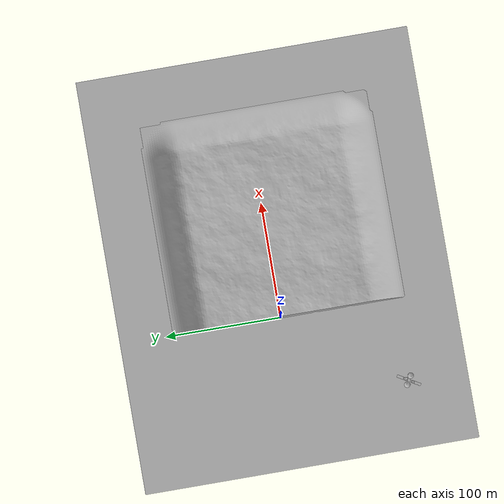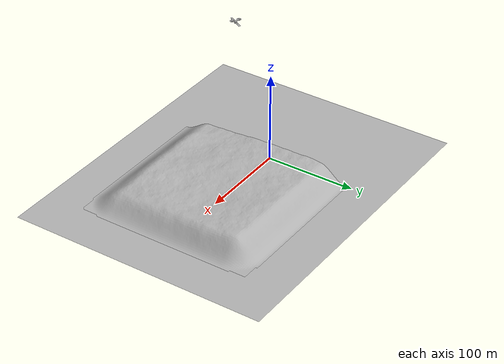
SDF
<sdf version="1.9">
 <world name="living_map">
  <model name="outside_ground">
   <static>true</static>
   <link name="l">
    <pose>-65 -5 -0.5 0 0 0</pose>
    <collision name="c"><geometry><box><size>130 290 1.0</size></box></geometry></collision>
   </link>
  </model>
  <model name="terrain">
   <static>true</static>
   <link name="l">
    <visual name="v">
     <geometry><mesh><uri>model://lm_terrain/meshes/terrain.obj</uri></mesh></geometry>
     <cast_shadows>false</cast_shadows>
    </visual>
   </link>
  </model>
  <model name="hillside">
   <static>true</static>
   <link name="l">
    <visual name="v"><geometry><mesh><uri>model://lm_hillside/meshes/hillside.obj</uri></mesh></geometry></visual>
   </link>
  </model>
  <model name="gallery_footprint">
   <static>true</static>
   <link name="l">
    <visual name="fp0">
     <pose>10.0 0.0 -0.33 0 0 0</pose>
     <geometry><box><size>20 4.0 0.02</size></box></geometry>
     <visibility_flags>2</visibility_flags>
     <material>
      <ambient>0.58 0.50 0.40 1</ambient>
      <diffuse>0.58 0.50 0.40 1</diffuse>
      <specular>0.1 0.1 0.1 1</specular>
     </material>
     <cast_shadows>false</cast_shadows>
    </visual>
    <visual name="fp1">
     <pose>30.0 0.0 -0.33 0 0 0</pose>
     <geometry><box><size>20 4.0 0.02</size></box></geometry>
     <visibility_flags>2</visibility_flags>
     <material>
      <ambient>0.58 0.50 0.40 1</ambient>
      <diffuse>0.58 0.50 0.40 1</diffuse>
      <specular>0.1 0.1 0.1 1</specular>
     </material>
     <cast_shadows>false</cast_shadows>
    </visual>
    <visual name="fp2">
     <pose>50.0 0.0 -0.33 0 0 0</pose>
     <geometry><box><size>20 4.0 0.02</size></box></geometry>
     <visibility_flags>2</visibility_flags>
     <material>
      <ambient>0.58 0.50 0.40 1</ambient>
      <diffuse>0.58 0.50 0.40 1</diffuse>
      <specular>0.1 0.1 0.1 1</specular>
     </material>
     <cast_shadows>false</cast_shadows>
    </visual>
    <visual name="fp3">
     <pose>50.0 0.0 -0.33 0 0 0</pose>
     <geometry><box><size>4.0 20 0.02</size></box></geometry>
     <visibility_flags>2</visibility_flags>
     <material>
      <ambient>0.58 0.50 0.40 1</ambient>
      <diffuse>0.58 0.50 0.40 1</diffuse>
      <specular>0.1 0.1 0.1 1</specular>
     </material>
     <cast_shadows>false</cast_shadows>
    </visual>
    <visual name="fp4">
     <pose>50.0 20.0 -0.33 0 0 0</pose>
     <geometry><box><size>4.0 20 0.02</size></box></geometry>
     <visibility_flags>2</visibility_flags>
     <material>
      <ambient>0.58 0.50 0.40 1</ambient>
      <diffuse>0.58 0.50 0.40 1</diffuse>
      <specular>0.1 0.1 0.1 1</specular>
     </material>
     <cast_shadows>false</cast_shadows>
    </visual>
    <visual name="fp5">
     <pose>70.0 0.0 -0.33 0 0 0</pose>
     <geometry><box><size>20 4.0 0.02</size></box></geometry>
     <visibility_flags>2</visibility_flags>
     <material>
      <ambient>0.58 0.50 0.40 1</ambient>
      <diffuse>0.58 0.50 0.40 1</diffuse>
      <specular>0.1 0.1 0.1 1</specular>
     </material>
     <cast_shadows>false</cast_shadows>
    </visual>
    <visual name="fp6">
     <pose>70.0 0.0 -0.33 0 0 0</pose>
     <geometry><box><size>4.0 20 0.02</size></box></geometry>
     <visibility_flags>2</visibility_flags>
     <material>
      <ambient>0.58 0.50 0.40 1</ambient>
      <diffuse>0.58 0.50 0.40 1</diffuse>
      <specular>0.1 0.1 0.1 1</specular>
     </material>
     <cast_shadows>false</cast_shadows>
    </visual>
    <visual name="fp7">
     <pose>70.0 -20.0 -0.33 0 0 0</pose>
     <geometry><box><size>4.0 20 0.02</size></box></geometry>
     <visibility_flags>2</visibility_flags>
     <material>
      <ambient>0.58 0.50 0.40 1</ambient>
      <diffuse>0.58 0.50 0.40 1</diffuse>
      <specular>0.1 0.1 0.1 1</specular>
     </material>
     <cast_shadows>false</cast_shadows>
    </visual>
    <visual name="fp8">
     <pose>70.0 20.0 -0.33 0 0 0</pose>
     <geometry><box><size>4.0 20 0.02</size></box></geometry>
     <visibility_flags>2</visibility_flags>
     <material>
      <ambient>0.58 0.50 0.40 1</ambient>
      <diffuse>0.58 0.50 0.40 1</diffuse>
      <specular>0.1 0.1 0.1 1</specular>
     </material>
     <cast_shadows>false</cast_shadows>
    </visual>
    <visual name="fp9">
     <pose>90.0 0.0 -0.33 0 0 0</pose>
     <geometry><box><size>20 4.0 0.02</size></box></geometry>
     <visibility_flags>2</visibility_flags>
     <material>
      <ambient>0.58 0.50 0.40 1</ambient>
      <diffuse>0.58 0.50 0.40 1</diffuse>
      <specular>0.1 0.1 0.1 1</specular>
     </material>
     <cast_shadows>false</cast_shadows>
    </visual>
    <visual name="fp10">
     <pose>110.0 0.0 -0.33 0 0 0</pose>
     <geometry><box><size>20 4.0 0.02</size></box></geometry>
     <visibility_flags>2</visibility_flags>
     <material>
      <ambient>0.58 0.50 0.40 1</ambient>
      <diffuse>0.58 0.50 0.40 1</diffuse>
      <specular>0.1 0.1 0.1 1</specular>
     </material>
     <cast_shadows>false</cast_shadows>
    </visual>
    <visual name="fp11">
     <pose>110.0 0.0 -0.33 0 0 0</pose>
     <geometry><box><size>4.0 20 0.02</size></box></geometry>
     <visibility_flags>2</visibility_flags>
     <material>
      <ambient>0.58 0.50 0.40 1</ambient>
      <diffuse>0.58 0.50 0.40 1</diffuse>
      <specular>0.1 0.1 0.1 1</specular>
     </material>
     <cast_shadows>false</cast_shadows>
    </visual>
    <visual name="fp12">
     <pose>130.0 0.0 -0.33 0 0 0</pose>
     <geometry><box><size>20 4.0 0.02</size></box></geometry>
     <visibility_flags>2</visibility_flags>
     <material>
      <ambient>0.58 0.50 0.40 1</ambient>
      <diffuse>0.58 0.50 0.40 1</diffuse>
      <specular>0.1 0.1 0.1 1</specular>
     </material>
     <cast_shadows>false</cast_shadows>
    </visual>
    <visual name="fp13">
     <pose>10.0 40.0 -0.33 0 0 0</pose>
     <geometry><box><size>20 4.0 0.02</size></box></geometry>
     <visibility_flags>2</visibility_flags>
     <material>
      <ambient>0.58 0.50 0.40 1</ambient>
      <diffuse>0.58 0.50 0.40 1</diffuse>
      <specular>0.1 0.1 0.1 1</specular>
     </material>
     <cast_shadows>false</cast_shadows>
    </visual>
    <visual name="fp14">
     <pose>30.0 40.0 -0.33 0 0 0</pose>
     <geometry><box><size>20 4.0 0.02</size></box></geometry>
     <visibility_flags>2</visibility_flags>
     <material>
      <ambient>0.58 0.50 0.40 1</ambient>
      <diffuse>0.58 0.50 0.40 1</diffuse>
      <specular>0.1 0.1 0.1 1</specular>
     </material>
     <cast_shadows>false</cast_shadows>
    </visual>
    <visual name="fp15">
     <pose>50.0 40.0 -0.33 0 0 0</pose>
     <geometry><box><size>20 4.0 0.02</size></box></geometry>
     <visibility_flags>2</visibility_flags>
     <material>
      <ambient>0.58 0.50 0.40 1</ambient>
      <diffuse>0.58 0.50 0.40 1</diffuse>
      <specular>0.1 0.1 0.1 1</specular>
     </material>
     <cast_shadows>false</cast_shadows>
    </visual>
    <visual name="fp16">
     <pose>70.0 40.0 -0.33 0 0 0</pose>
     <geometry><box><size>20 4.0 0.02</size></box></geometry>
     <visibility_flags>2</visibility_flags>
     <material>
      <ambient>0.58 0.50 0.40 1</ambient>
      <diffuse>0.58 0.50 0.40 1</diffuse>
      <specular>0.1 0.1 0.1 1</specular>
     </material>
     <cast_shadows>false</cast_shadows>
    </visual>
    <visual name="fp17">
     <pose>70.0 40.0 -0.33 0 0 0</pose>
     <geometry><box><size>4.0 20 0.02</size></box></geometry>
     <visibility_flags>2</visibility_flags>
     <material>
      <ambient>0.58 0.50 0.40 1</ambient>
      <diffuse>0.58 0.50 0.40 1</diffuse>
      <specular>0.1 0.1 0.1 1</specular>
     </material>
     <cast_shadows>false</cast_shadows>
    </visual>
    <visual name="fp22">
     <pose>1.25 -30.0 -0.33 0 0 0</pose>
     <geometry><box><size>2.5 3.3999999999999986 0.02</size></box></geometry>
     <visibility_flags>2</visibility_flags>
     <material>
      <ambient>0.58 0.50 0.40 1</ambient>
      <diffuse>0.58 0.50 0.40 1</diffuse>
      <specular>0.1 0.1 0.1 1</specular>
     </material>
     <cast_shadows>false</cast_shadows>
    </visual>
   </link>
  </model>
  <model name="relay_satellite">
   <static>true</static>
   <pose>-75.0 -95.0 100.0 0 0 -2.096</pose>
   <link name="l">
    <visual name="v">
     <geometry><mesh><uri>model://lm_tdrs/meshes/tdrs.obj</uri></mesh></geometry>
     <cast_shadows>false</cast_shadows>
    </visual>
   </link>
  </model>
 </world>
</sdf>
